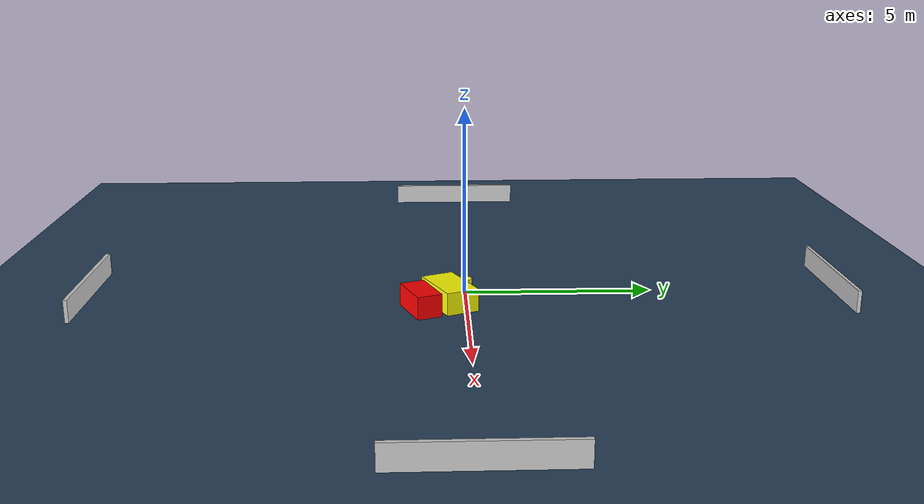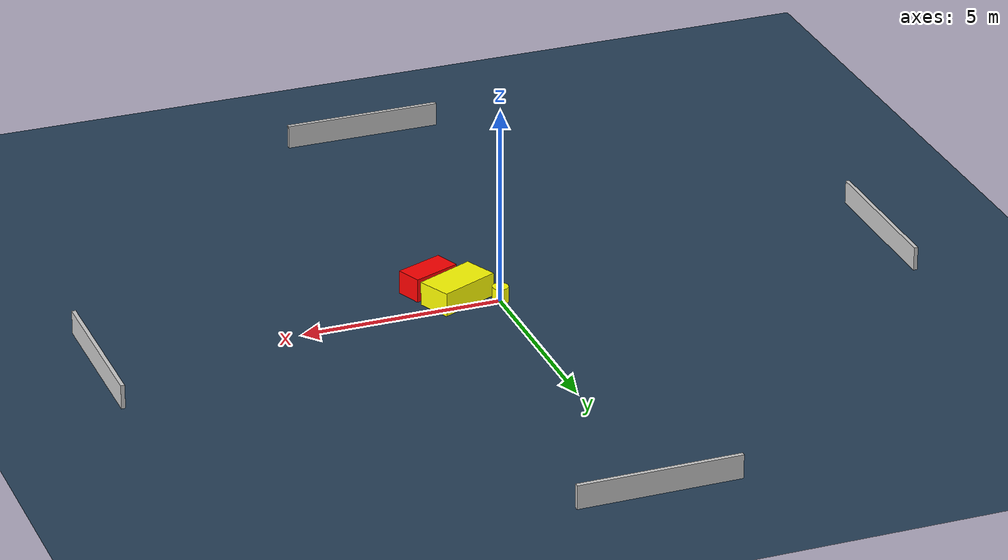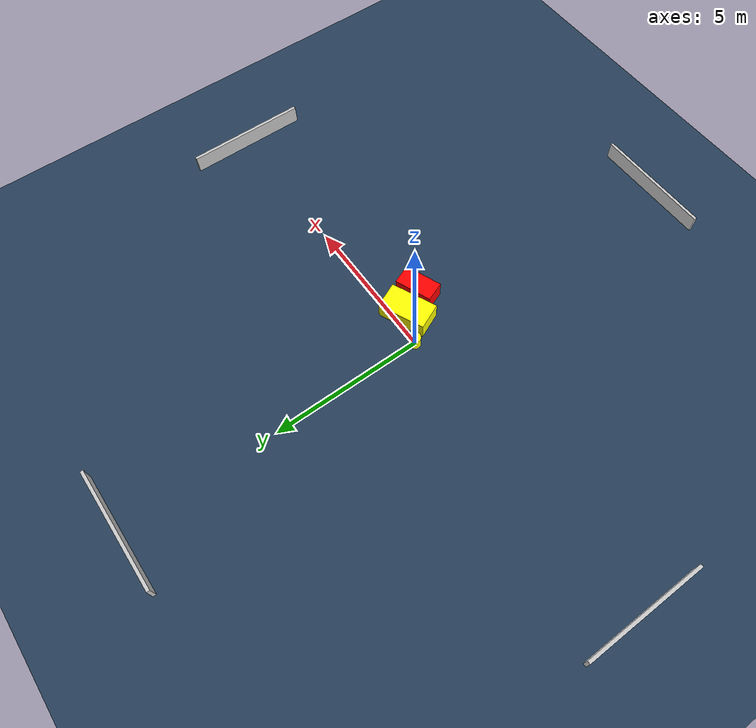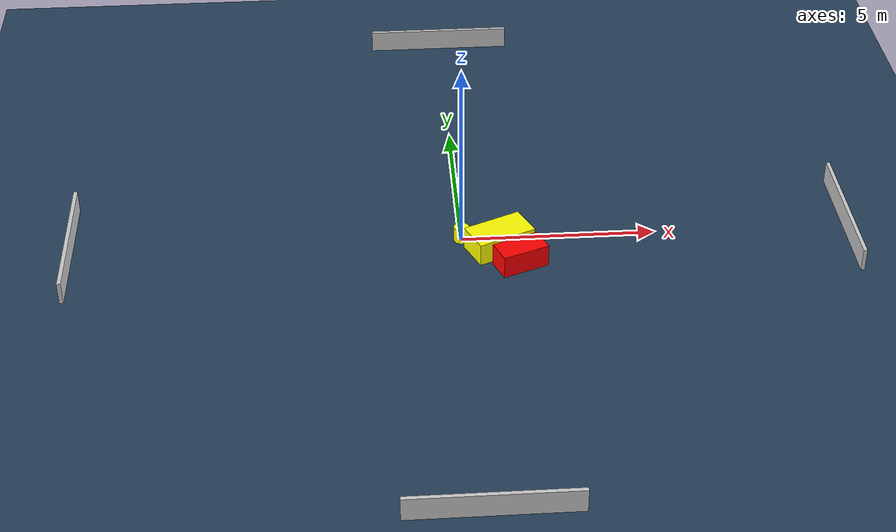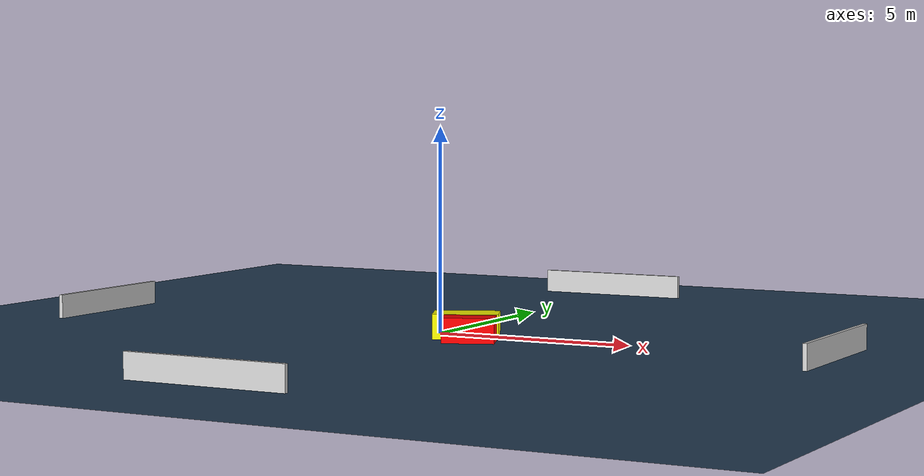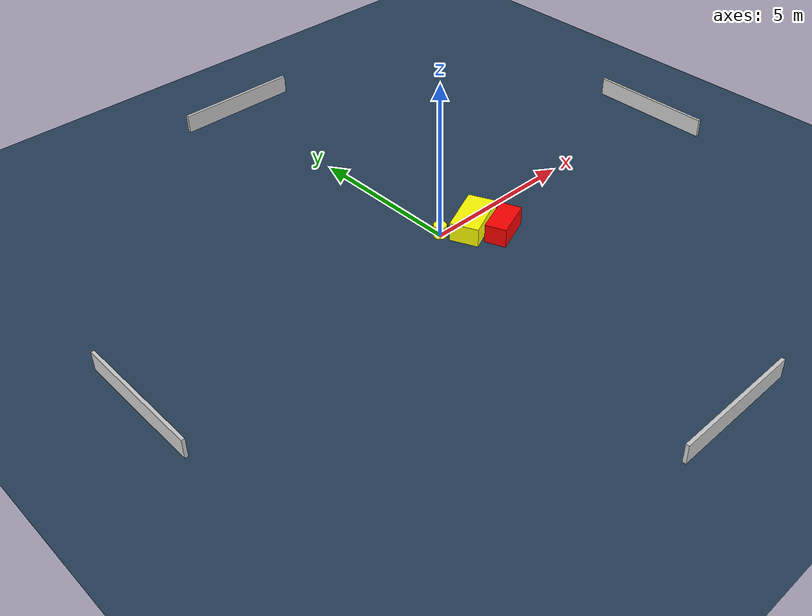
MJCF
<?xml version="1.0" ?>
<mujoco model="generated_environment">
  <option timestep="0.01" integrator="RK4" cone="elliptic"/>
  <default>
    <geom density="1"/>
  </default>
  <asset>
    <texture builtin="gradient" height="3072" name="skybox" rgb1="0.3 0.5 0.7" rgb2="0 0 0" type="skybox" width="512"/>
    <texture builtin="checker" height="300" name="groundplane" rgb1="0.2 0.3 0.4" rgb2="0.1 0.2 0.3" type="2d" width="300"/>
    <material name="groundplane" reflectance="0.2" texrepeat="5 5" texture="groundplane"/>
  </asset>
  <worldbody>
    <light dir="0 0 -1" directional="true" pos="0 0 1.5"/>
    <geom condim="3" friction="0.5 0.005 0.001" material="groundplane" name="floor" pos="0 0 0" size="0 0 0.05" type="plane"/>
    <body name="walls">
      <geom name="wall_1" condim="4" pos="-10.0 0.0 0.3" rgba="0.800000011920929 0.800000011920929 0.800000011920929 1.0" size="0.05 2.0 0.3" type="box"/>
      <geom name="wall_2" condim="4" pos="10.0 0.0 0.3" rgba="0.800000011920929 0.800000011920929 0.800000011920929 1.0" size="0.05 2.0 0.3" type="box"/>
      <geom name="wall_3" condim="4" pos="0.0 -10.0 0.3" rgba="0.800000011920929 0.800000011920929 0.800000011920929 1.0" size="2.0 0.05 0.3" type="box"/>
      <geom name="wall_4" condim="4" pos="0.0 10.0 0.3" rgba="0.800000011920929 0.800000011920929 0.800000011920929 1.0" size="2.0 0.05 0.3" type="box"/>
    </body>
    <body name="robot">
      <joint name="joint_x" type="slide" pos="0 0 0" axis="1 0 0"/>
      <joint name="joint_y" type="slide" pos="0 0 0" axis="0 1 0"/>
      <geom name="robot" type="cylinder" pos="0.0 0.0 0.2" size="0.2 0.2 0.0" mass="5.0" friction="1.0 0.005 0.0001" condim="4" rgba="1.0 1.0 0.0 1.0"/>
    </body>
    <body name="obstacle_1_movable">
      <geom name="obstacle_1_movable" condim="4" pos="0.9416629659412422 -0.42129385232709227 0.3" euler="0 0 204.21648121252176" friction="0.0 0.005 0.001" rgba="1.0 1.0 0.0 1.0" size="0.7880991309896195 0.43948011604749465 0.3" type="box" mass="0.1"/>
      <joint type="free"/>
    </body>
    <body name="obstacle_2_static">
      <geom name="obstacle_2_static" condim="4" pos="1.4150422326273855 -1.1751817056237925 0.3" euler="0 0 291.70179266898685" friction="0.0 0.005 0.001" rgba="1.0 0.0 0.0 1.0" size="0.3285199995053274 0.6239202304970708 0.3" type="box"/>
    </body>
  </worldbody>
  <actuator>
    <motor name="actuator_x" joint="joint_x" gear="1" ctrlrange="-1 1"/>
    <motor name="actuator_y" joint="joint_y" gear="1" ctrlrange="-1 1"/>
  </actuator>
</mujoco>
